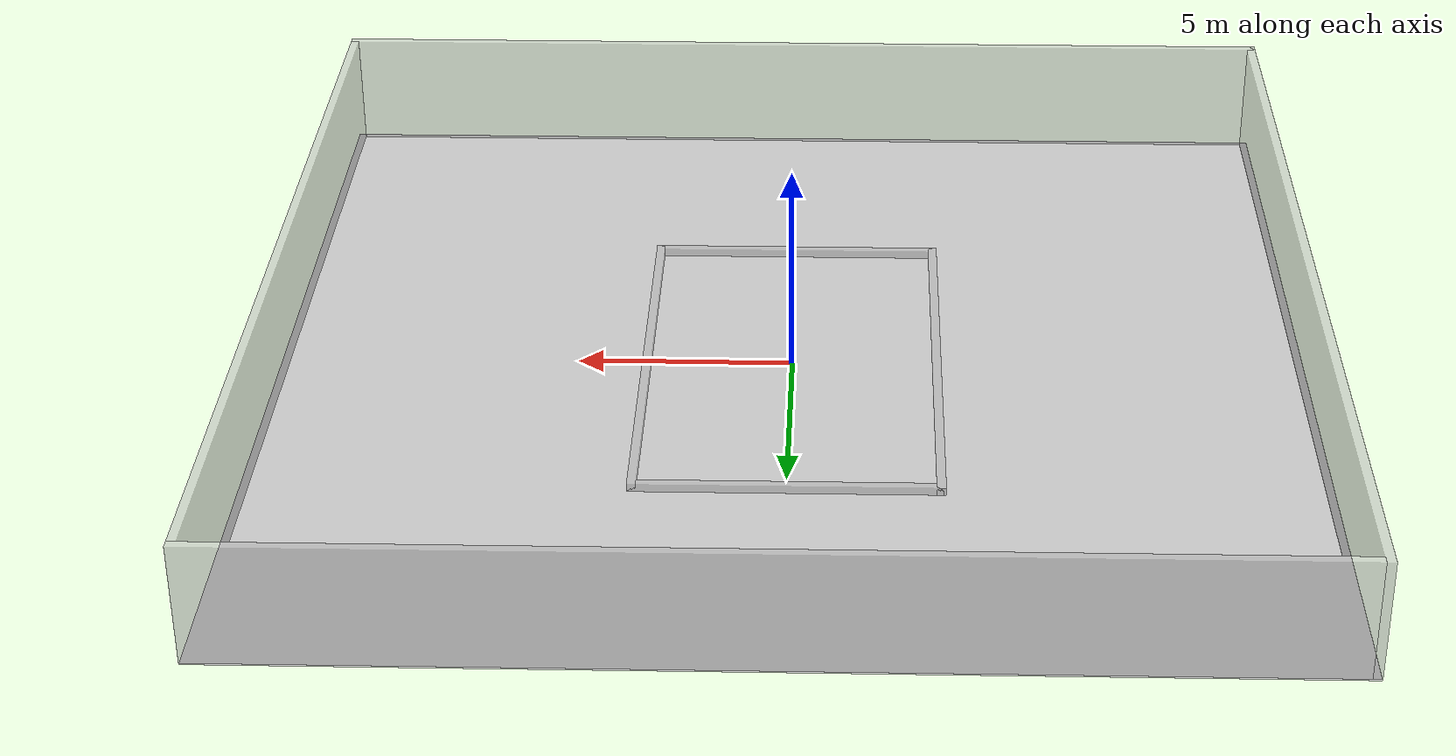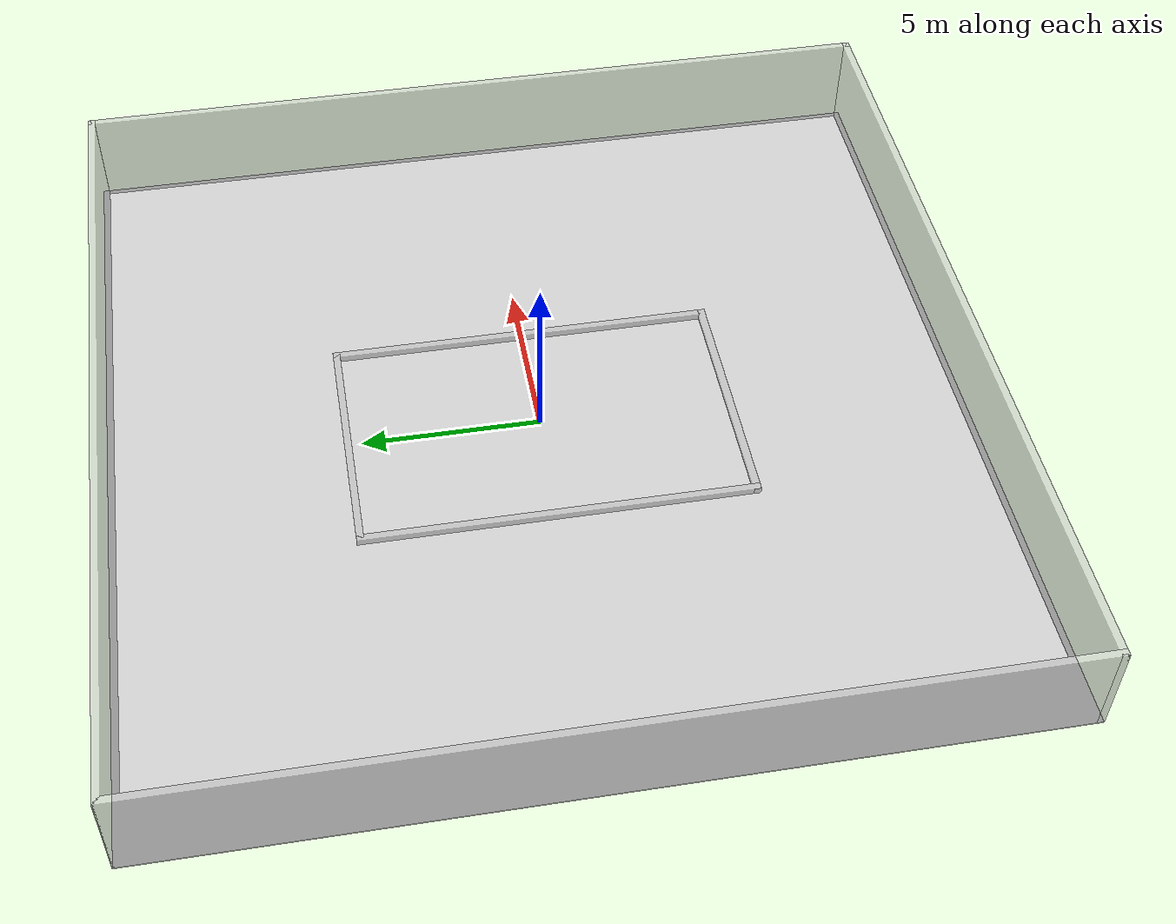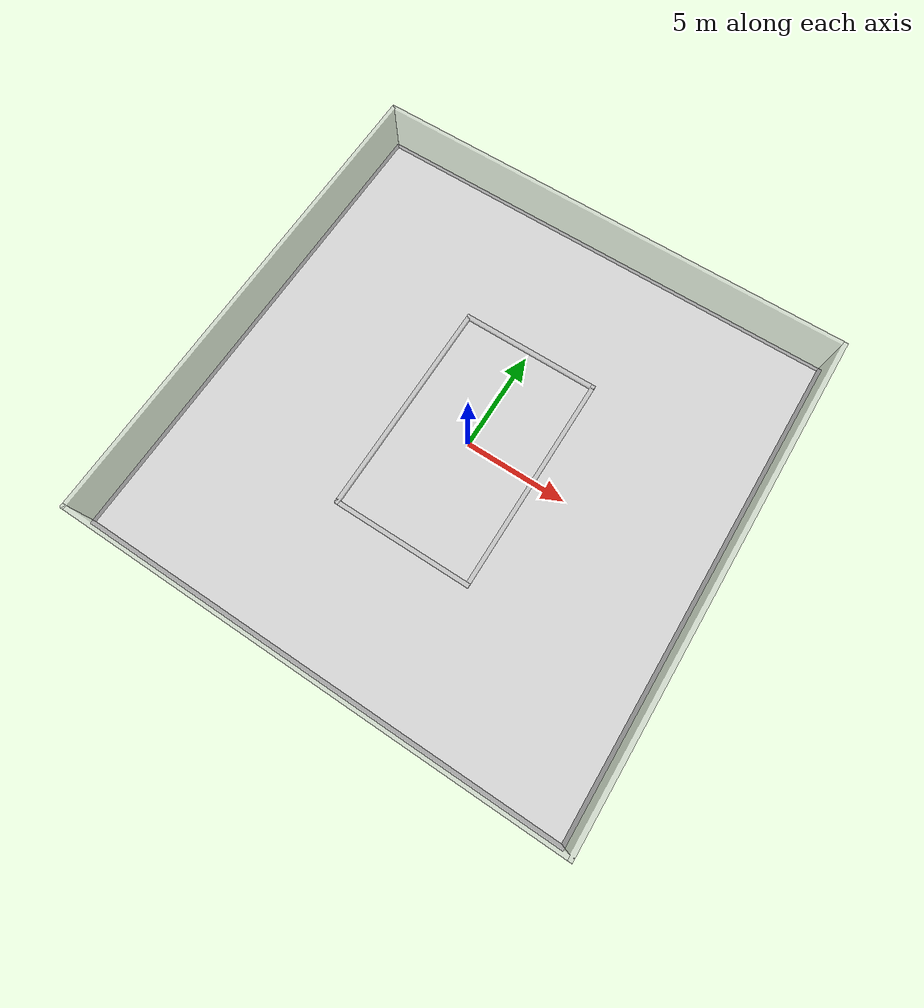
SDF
<?xml version="1.0"?>
<sdf version="1.4">
<world name="medium_track">

  <scene>
    <ambient>0.5 0.5 0.5 1.0</ambient>
    <shadows>0</shadows>
  </scene>

  <include>
    <uri>model://sun</uri>
    <pose>0.0 0.0 15.0 0 0 0</pose>
    <cast_shadows>false</cast_shadows>
    <attenuation>
      <constant>0.5</constant>
      <linear>0.01</linear>
      <quadratic>0.0</quadratic>
      <range>100</range>
    </attenuation>
  </include>

  <light type="point" name="Light 1">
         <pose>0 0 15 0 0 0</pose>
         <diffuse>.9 .9 .9 1</diffuse>
         <specular>.1 .1 .1 1</specular>
         <attenuation>
                <constant>0.4</constant>
                <linear>0.0</linear>
                <quadratic>0.02</quadratic>
                <range>50</range>
         </attenuation>
         <direction>0 0 -1</direction>
         <cast_shadows>false</cast_shadows>
  </light>

  <include>
    <uri>model://sim_world/models//medium_track_plane_large</uri>
    <pose>0 0 0 0 0 0</pose>
    <name>racetrack</name>
  </include>
    <include>
      <name>right_wall</name>
      <uri>model://sim_world/models/transparent_wall_24m</uri>
      <static>true</static>
      <pose>11.9 0 0 0 0 0</pose>
    </include>
    <include>
      <name>left_wall</name>
      <uri>model://sim_world/models/transparent_wall_24m</uri>
      <static>true</static>
      <pose>-11.9 0 0 0 0 0</pose>
    </include>
    <include>
      <name>upper_wall</name>
      <uri>model://sim_world/models/transparent_wall_24m</uri>
      <static>true</static>
      <pose>0 11.9 0 0 0 1.5708</pose>
    </include>
    <include>
      <name>lower_wall</name>
      <uri>model://sim_world/models/transparent_wall_24m</uri>
      <static>true</static>
      <pose>0 -11.9 0 0 0 1.5708</pose>
    </include>

    <include>
      <name>upper_wood</name>
      <uri>model://sim_world/models/transparent_block_700_20_20cm</uri>
      <static>true</static>
      <pose>0 5.4 0 0 0 0</pose>
    </include>
    <include>
      <name>lower_wood</name>
      <uri>model://sim_world/models/transparent_block_700_20_20cm</uri>
      <static>true</static>
      <pose>0 -5.4 0 0 0 0</pose>
    </include>
    <include>
      <name>right_wood</name>
      <uri>model://sim_world/models/transparent_block_1100_20_20cm</uri>
      <static>true</static>
      <pose>3.4 0 0 0 0 1.5708</pose>
    </include>
    <include>
      <name>left_wood</name>
      <uri>model://sim_world/models/transparent_block_1100_20_20cm</uri>
      <static>true</static>
      <pose>-3.4 0 0 0 0 1.5708</pose>
    </include>

</world>
</sdf>

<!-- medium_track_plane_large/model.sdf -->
<sdf version="1.4">
<model name="medium_track">
  <static>true</static>
    <link name="link">
      <collision name="collision">
        <geometry>
          <plane>
            <normal>0 0 1</normal>
            <size>100 100</size>
          </plane>
        </geometry>
        <surface>
          <friction>
            <ode>
              <mu>100</mu>
              <mu2>50</mu2>
            </ode>
          </friction>
        </surface>
      </collision>
      <visual name="visual">
        <cast_shadows>false</cast_shadows>
        <geometry>
          <plane>
            <normal>0 0 1</normal>
            <size>24 24</size>
          </plane>
        </geometry>
        <material>
		  <script>
		    <uri>model://sim_world/meshes/medium_track_plane_large/scripts</uri>
            <uri>model://sim_world/meshes/medium_track_plane_large/textures</uri>
            <name>medium_track/Image</name>
		  </script>
        </material>
      </visual>
    </link>
  </model>
</sdf>

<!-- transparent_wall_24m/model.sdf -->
<sdf version="1.5">
  <model name="white_wall">
    <static>true</static>
    <link name="link">
      <pose>0 0 1.4 0 0 0</pose>
      <collision name="collision">
        <geometry>
          <box>
            <size>0.2 24.0 2.8</size>
          </box>
        </geometry>
      </collision>

      <visual name="visual">
        <geometry>
          <box>
            <size>0.2 24.0 2.8</size>
          </box>
        </geometry>
        <material>
          <script>
 		        <uri>model://sim_world/meshes/transparent/scripts</uri>
            <uri>model://sim_world/meshes/transparent/textures</uri>
            <name>vrc/transparent</name>
         </script>
        </material>
      </visual>

    </link>
  </model>
</sdf>

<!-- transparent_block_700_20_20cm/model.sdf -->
<sdf version="1.5">
  <model name="wood_block_144_10_10cm">
    <static>true</static>
    <link name="link">
      <pose>0 0 0.05 0 0 0</pose>

      <inertial>
        <mass>1000</mass>
      </inertial>

      <collision name="collision">
        <geometry>
          <box>
            <size>7.0 0.2 0.2</size>
          </box>
        </geometry>
        <surface>
          <contact>
            <!-- Red Pine coefficients for longitudinal axis of the wood
                 according to:
                 http://www.fpl.fs.fed.us/documnts/fplgtr/fplgtr113/ch04.pdf -->

            <poissons_ratio>0.347</poissons_ratio>
            <elastic_modulus>8.8e+09</elastic_modulus>
            <ode>
              <kp>100000</kp>
              <kd>1</kd>
              <max_vel>1.0</max_vel>
              <min_depth>0.001</min_depth>
            </ode>
          </contact>
          <friction>
            <torsional>
              <coefficient>1.0</coefficient>
              <use_patch_radius>0</use_patch_radius>
              <surface_radius>0.05</surface_radius>
            </torsional>
          </friction>
        </surface>
      </collision>

      <visual name="visual">
        <geometry>
          <box>
            <size>7.0 0.2 0.2</size>
          </box>
        </geometry>
        <material>
          <script>
 		        <uri>model://sim_world/meshes/transparent/scripts</uri>
            <uri>model://sim_world/meshes/transparent/textures</uri>
            <name>vrc/transparent</name>
         </script>
        </material>
      </visual>

    </link>
  </model>
</sdf>

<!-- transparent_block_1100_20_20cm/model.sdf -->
<sdf version="1.5">
  <model name="wood_block_144_10_10cm">
    <static>true</static>
    <link name="link">
      <pose>0 0 0.05 0 0 0</pose>

      <inertial>
        <mass>1000</mass>
      </inertial>

      <collision name="collision">
        <geometry>
          <box>
            <size>11.00 0.2 0.2</size>
          </box>
        </geometry>
        <surface>
          <contact>
            <!-- Red Pine coefficients for longitudinal axis of the wood
                 according to:
                 http://www.fpl.fs.fed.us/documnts/fplgtr/fplgtr113/ch04.pdf -->

            <poissons_ratio>0.347</poissons_ratio>
            <elastic_modulus>8.8e+09</elastic_modulus>
            <ode>
              <kp>100000</kp>
              <kd>1</kd>
              <max_vel>1.0</max_vel>
              <min_depth>0.001</min_depth>
            </ode>
          </contact>
          <friction>
            <torsional>
              <coefficient>1.0</coefficient>
              <use_patch_radius>0</use_patch_radius>
              <surface_radius>0.05</surface_radius>
            </torsional>
          </friction>
        </surface>
      </collision>

      <visual name="visual">
        <geometry>
          <box>
            <size>11.0 0.2 0.2</size>
          </box>
        </geometry>
        <material>
          <script>
 		        <uri>model://sim_world/meshes/transparent/scripts</uri>
            <uri>model://sim_world/meshes/transparent/textures</uri>
            <name>vrc/transparent</name>
         </script>
        </material>
      </visual>

    </link>
  </model>
</sdf>
